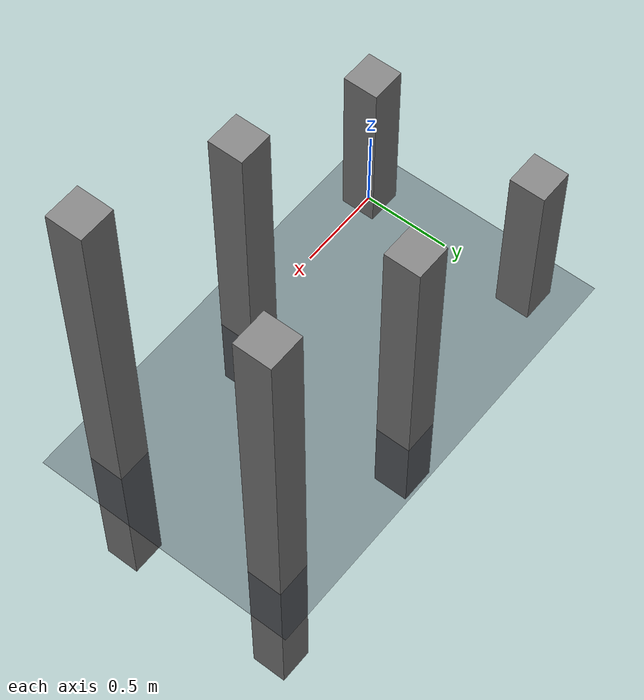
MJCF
<mujoco model="TestModel">
    <compiler inertiafromgeom="true" angle="radian"/>

    <option timestep="0.001" >
        <flag energy="enable" clampctrl="disable" />
    </option>

    <visual>
        <map force="0.1" zfar="30"/>
        <rgba haze="0.15 0.25 0.35 1"/>
        <quality shadowsize="2048"/>
        <global offwidth="800" offheight="800"/>
        <headlight ambient="0.7 0.7 0.7" />
    </visual>

    <asset>
        <texture type="skybox" builtin="gradient" rgb1="0.3 0.5 0.7" rgb2="0 0 0" width="512" height="512"/>

        <texture name="texplane" type="2d" builtin="checker" rgb1=".2 .3 .4" rgb2=".1 0.15 0.2" width="512" height="512" mark="cross" markrgb=".8 .8 .8"/>

        <material name="matplane" reflectance="0.3" texture="texplane" texrepeat="1 1" texuniform="true" rgba="0.1 0.2 0.3 0.4" />

    </asset>

    <worldbody>
        <geom name="floor" pos="0 0 0" size="0 0 .25" type="plane" material="matplane" condim="3"/>

        <body name="box1_body" pos="0 0 0.5" xyaxes="0 1 0 1 0 0" >
            <geom name="box1_geom" type="box" size="0.1 0.1 0.5" />
            <joint name="box1_joint" type="free" />
        </body>

        <body name="box2_body" pos="1 0 0.5" xyaxes="0 1 0 1 0 0" >
            <geom name="box2_geom" type="box" size="0.1 0.1 1" />
            <joint name="box2_joint" type="slide" axis="1 0 0" />
        </body>

        <body name="box3_body" pos="2 0 0.5" xyaxes="0 1 0 1 0 0" >
            <geom name="box3_geom" type="box" size="0.1 0.1 1.5" />
            <joint name="box3_joint" type="slide" axis="1 0 0" />
        </body>

        <body name="box1_mocap_body" pos="0 1 0.5" xyaxes="0 1 0 1 0 0" >
            <geom name="box1_mocap_geom" type="box" size="0.1 0.1 0.5" />
        </body>

        <body name="box2_mocap_body" pos="1 1 0.5" xyaxes="0 1 0 1 0 0" >
            <geom name="box2_mocap_geom" type="box" size="0.1 0.1 1" />
        </body>

        <body name="box3_mocap_body" pos="2 1 0.5" xyaxes="0 1 0 1 0 0" >
            <geom name="box3_mocap_geom" type="box" size="0.1 0.1 1.5" />
        </body>

    </worldbody>

    <actuator>
        <motor name="box1_motor" joint="box1_joint" forcelimited="true" forcerange="-1 1" />
        <cylinder name="box2_cylinder" joint="box2_joint" forcelimited="true" forcerange="-1 1" />
        <muscle name="box3_muscle" joint="box3_joint" lengthrange="0 0.2" forcelimited="true" forcerange="-1 1" />
    </actuator>

</mujoco>
